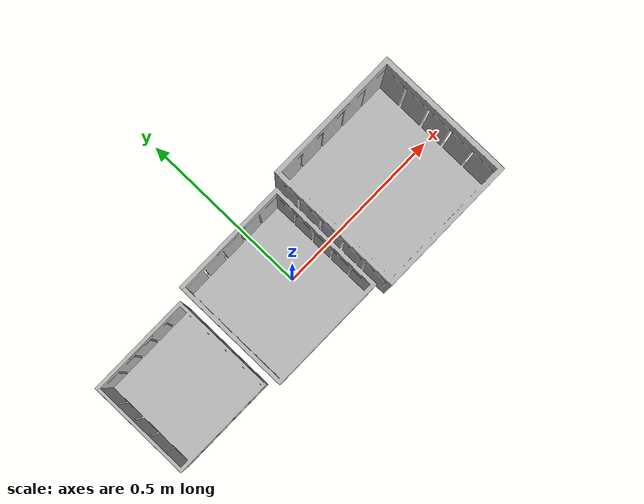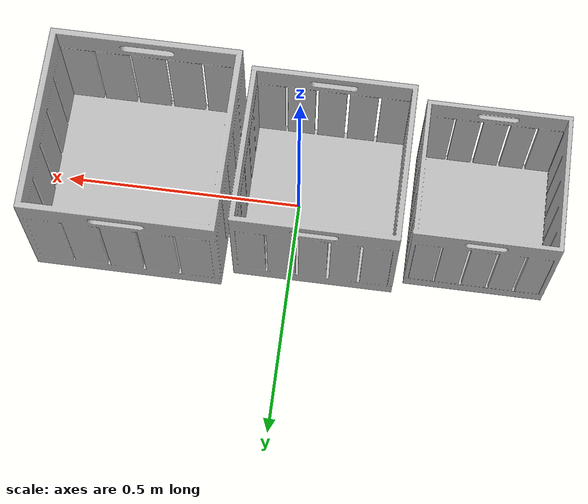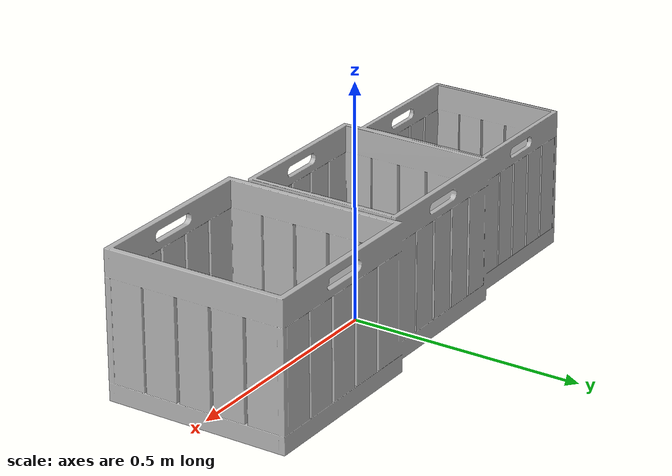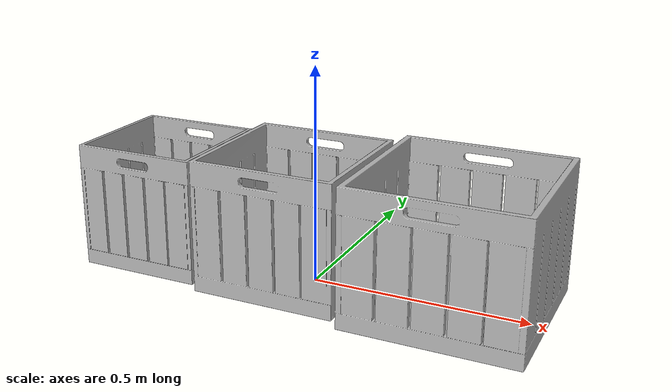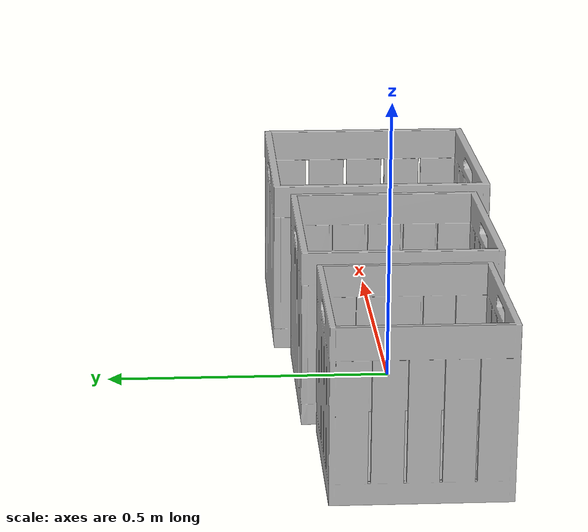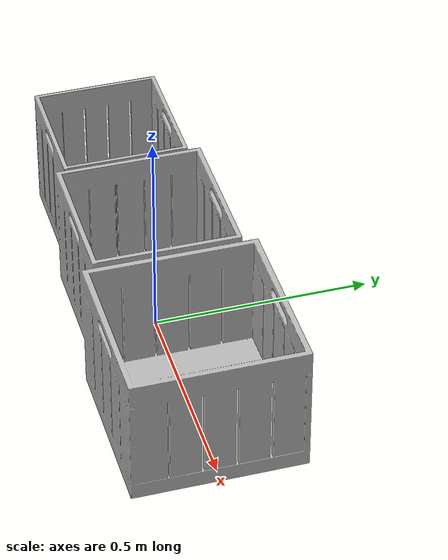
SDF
<sdf version="1.6">
	<model name="HomeStorageBasketsBinsAndContainers_Oa5676f43a3ee_lod0">
		<link name="main_link">
			<visual name="visual_RootNode">
				<geometry>
					<mesh>
						<uri>model://HomeStorageBasketsBinsAndContainers_Oa5676f43a3ee_lod0/meshes/visual_RootNode.dae</uri>
					</mesh>
				</geometry>
			</visual>
			<collision name="collision_RootNode_lod0_0">
				<geometry>
					<mesh>
						<uri>model://HomeStorageBasketsBinsAndContainers_Oa5676f43a3ee_lod0/meshes/collision_RootNode_lod0_0.dae</uri>
					</mesh>
				</geometry>
			</collision>
		</link>
	</model>
</sdf>
